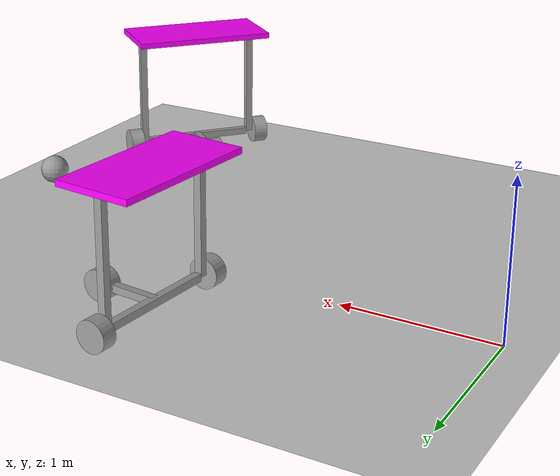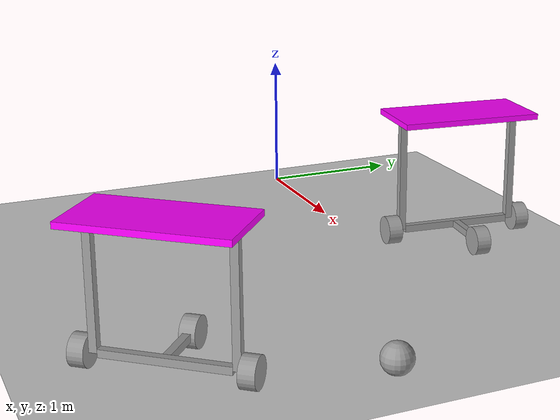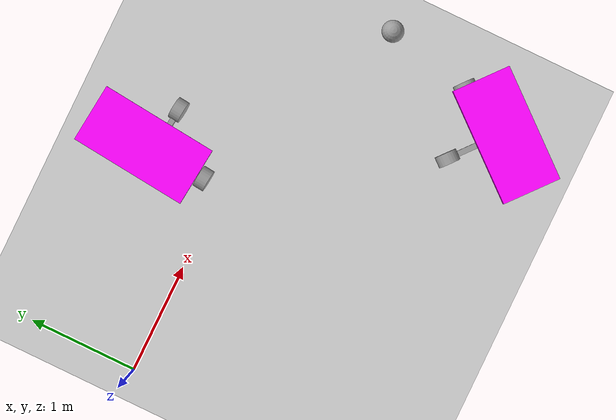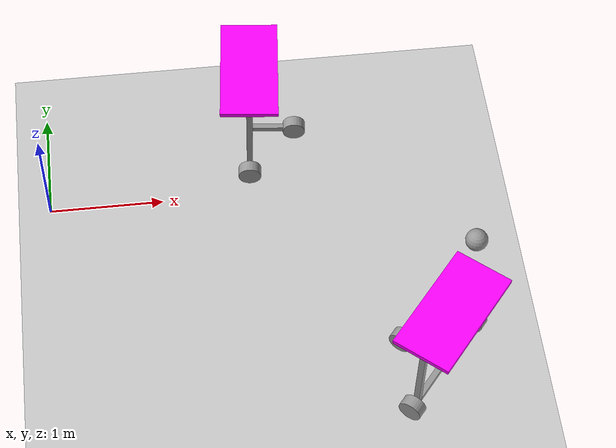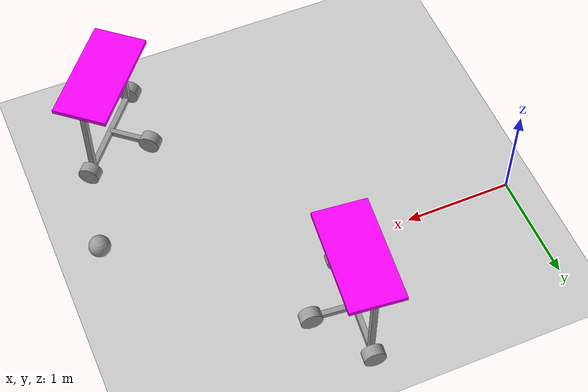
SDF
<sdf version="1.7">
 <world name="default">
  <model name="ground_plane">
   <static>1</static>
   <link name="link">
    <collision name="collision">
     <geometry><plane><normal>0 0 1</normal><size>100 100</size></plane></geometry>
     <surface>
      <contact><collide_bitmask>65535</collide_bitmask></contact>
      <friction><ode><mu>100</mu><mu2>50</mu2></ode></friction>
     </surface>
    </collision>
    <visual name="visual">
     <cast_shadows>0</cast_shadows>
     <geometry><plane><normal>0 0 1</normal><size>100 100</size></plane></geometry>
     <material>
      <script><uri>file://media/materials/scripts/gazebo.material</uri><name>Gazebo/Grey</name></script>
     </material>
    </visual>
   </link>
  </model>
  <model name="HumanoidRobot_3">
   <link name="link_0">
    <inertial>
     <mass>1</mass>
     <inertia>
      <ixx>0.166667</ixx>
      <ixy>0</ixy>
      <ixz>0</ixz>
      <iyy>0.166667</iyy>
      <iyz>0</iyz>
      <izz>0.166667</izz>
     </inertia>
    </inertial>
    <pose>0 -0 0.92 0 -0 0</pose>
    <visual name="visual">
     <geometry><box><size>0.5 1 0.04</size></box></geometry>
     <material>
      <lighting>1</lighting>
      <script><uri>file://media/materials/scripts/gazebo.material</uri><name>Gazebo/Grey</name></script>
      <shader type="pixel"><normal_map>__default__</normal_map></shader>
      <ambient>0.3 0.3 0.3 1</ambient>
      <diffuse>1 0 1 1</diffuse>
      <specular>0.01 0.01 0.01 1</specular>
      <emissive>0 0 0 1</emissive>
     </material>
    </visual>
    <collision name="collision">
     <geometry><box><size>0.5 1 0.04</size></box></geometry>
     <surface>
      <friction>
       <ode><mu>1</mu><mu2>1</mu2><fdir1>0 0 0</fdir1><slip1>0</slip1><slip2>0</slip2></ode>
       <torsional>
        <coefficient>1</coefficient>
        <patch_radius>0</patch_radius>
        <surface_radius>0</surface_radius>
        <use_patch_radius>1</use_patch_radius>
        <ode><slip>0</slip></ode>
       </torsional>
      </friction>
      <bounce><restitution_coefficient>0</restitution_coefficient><threshold>1e+06</threshold></bounce>
      <contact>
       <collide_without_contact>0</collide_without_contact>
       <collide_without_contact_bitmask>1</collide_without_contact_bitmask>
       <collide_bitmask>1</collide_bitmask>
       <ode>
        <soft_cfm>0</soft_cfm>
        <soft_erp>0.2</soft_erp>
        <kp>1e+13</kp>
        <kd>1</kd>
        <max_vel>0.01</max_vel>
        <min_depth>0</min_depth>
       </ode>
       <bullet>
        <split_impulse>1</split_impulse>
        <split_impulse_penetration_threshold>-0.01</split_impulse_penetration_threshold>
        <soft_cfm>0</soft_cfm>
        <soft_erp>0.2</soft_erp>
        <kp>1e+13</kp>
        <kd>1</kd>
       </bullet>
      </contact>
     </surface>
    </collision>
   </link>
   <link name="link_0_0">
    <inertial>
     <mass>1</mass>
     <inertia><ixx>0.145833</ixx><ixy>0</ixy><ixz>0</ixz><iyy>0.145833</iyy><iyz>0</iyz><izz>0.125</izz></inertia>
    </inertial>
    <pose>0 -0.5 0.1 0 -0 0</pose>
    <visual name="visual">
     <pose>0 0 0 1.5708 -0 0</pose>
     <geometry><cylinder><radius>0.1</radius><length>0.1</length></cylinder></geometry>
     <material>
      <lighting>1</lighting>
      <script><uri>file://media/materials/scripts/gazebo.material</uri><name>Gazebo/Grey</name></script>
      <shader type="pixel"><normal_map>__default__</normal_map></shader>
      <ambient>0 0 0 1</ambient>
      <diffuse>0 0 0 1</diffuse>
      <specular>0.01 0.01 0.01 1</specular>
      <emissive>0 0 0 1</emissive>
     </material>
    </visual>
    <collision name="collision">
     <pose>0 0 0 1.5708 -0 0</pose>
     <geometry><cylinder><radius>0.1</radius><length>0.1</length></cylinder></geometry>
     <surface>
      <friction>
       <ode><mu>1</mu><mu2>1</mu2><fdir1>0 0 0</fdir1><slip1>0</slip1><slip2>0</slip2></ode>
       <torsional>
        <coefficient>1</coefficient>
        <patch_radius>0</patch_radius>
        <surface_radius>0</surface_radius>
        <use_patch_radius>1</use_patch_radius>
        <ode><slip>0</slip></ode>
       </torsional>
      </friction>
      <bounce><restitution_coefficient>0</restitution_coefficient><threshold>1e+06</threshold></bounce>
      <contact>
       <collide_without_contact>0</collide_without_contact>
       <collide_without_contact_bitmask>1</collide_without_contact_bitmask>
       <collide_bitmask>1</collide_bitmask>
       <ode>
        <soft_cfm>0</soft_cfm>
        <soft_erp>0.2</soft_erp>
        <kp>1e+13</kp>
        <kd>1</kd>
        <max_vel>0.01</max_vel>
        <min_depth>0</min_depth>
       </ode>
       <bullet>
        <split_impulse>1</split_impulse>
        <split_impulse_penetration_threshold>-0.01</split_impulse_penetration_threshold>
        <soft_cfm>0</soft_cfm>
        <soft_erp>0.2</soft_erp>
        <kp>1e+13</kp>
        <kd>1</kd>
       </bullet>
      </contact>
     </surface>
    </collision>
   </link>
   <link name="link_0_0_clone">
    <inertial>
     <mass>1</mass>
     <inertia><ixx>0.145833</ixx><ixy>0</ixy><ixz>0</ixz><iyy>0.145833</iyy><iyz>0</iyz><izz>0.125</izz></inertia>
    </inertial>
    <pose>-0 0.5 0.1 0 -0 0</pose>
    <visual name="visual_0">
     <pose>0 0 0 1.5708 -0 0</pose>
     <geometry><cylinder><radius>0.1</radius><length>0.1</length></cylinder></geometry>
     <material>
      <lighting>1</lighting>
      <script><uri>file://media/materials/scripts/gazebo.material</uri><name>Gazebo/Gray</name></script>
      <shader type="pixel"><normal_map>__default__</normal_map></shader>
      <ambient>0 0 0 1</ambient>
      <diffuse>0 0 0 1</diffuse>
      <specular>0.01 0.01 0.01 1</specular>
      <emissive>0 0 0 1</emissive>
     </material>
    </visual>
    <collision name="collision">
     <pose>0 0 0 1.5708 -0 0</pose>
     <geometry><cylinder><radius>0.1</radius><length>0.1</length></cylinder></geometry>
     <surface>
      <friction>
       <ode><mu>1</mu><mu2>1</mu2><fdir1>0 0 0</fdir1><slip1>0</slip1><slip2>0</slip2></ode>
       <torsional>
        <coefficient>1</coefficient>
        <patch_radius>0</patch_radius>
        <surface_radius>0</surface_radius>
        <use_patch_radius>1</use_patch_radius>
        <ode><slip>0</slip></ode>
       </torsional>
      </friction>
      <bounce><restitution_coefficient>0</restitution_coefficient><threshold>1e+06</threshold></bounce>
      <contact>
       <collide_without_contact>0</collide_without_contact>
       <collide_without_contact_bitmask>1</collide_without_contact_bitmask>
       <collide_bitmask>1</collide_bitmask>
       <ode>
        <soft_cfm>0</soft_cfm>
        <soft_erp>0.2</soft_erp>
        <kp>1e+13</kp>
        <kd>1</kd>
        <max_vel>0.01</max_vel>
        <min_depth>0</min_depth>
       </ode>
       <bullet>
        <split_impulse>1</split_impulse>
        <split_impulse_penetration_threshold>-0.01</split_impulse_penetration_threshold>
        <soft_cfm>0</soft_cfm>
        <soft_erp>0.2</soft_erp>
        <kp>1e+13</kp>
        <kd>1</kd>
       </bullet>
      </contact>
     </surface>
    </collision>
   </link>
   <link name="link_0_0_clone_0">
    <inertial>
     <mass>1</mass>
     <inertia><ixx>0.145833</ixx><ixy>0</ixy><ixz>0</ixz><iyy>0.145833</iyy><iyz>0</iyz><izz>0.125</izz></inertia>
    </inertial>
    <pose>0.4 0 0.1 0 -0 0</pose>
    <visual name="visual">
     <pose>0 0 0 1.5708 -0 0</pose>
     <geometry><cylinder><radius>0.1</radius><length>0.1</length></cylinder></geometry>
     <material>
      <lighting>1</lighting>
      <script><uri>file://media/materials/scripts/gazebo.material</uri><name>Gazebo/Grey</name></script>
      <shader type="pixel"><normal_map>__default__</normal_map></shader>
      <ambient>0 0 0 1</ambient>
      <diffuse>0 0 0 1</diffuse>
      <specular>0.01 0.01 0.01 1</specular>
      <emissive>0 0 0 1</emissive>
     </material>
    </visual>
    <collision name="collision">
     <pose>0 0 0 1.5708 -0 0</pose>
     <geometry><cylinder><radius>0.1</radius><length>0.1</length></cylinder></geometry>
     <surface>
      <friction>
       <ode><mu>1</mu><mu2>1</mu2><fdir1>0 0 0</fdir1><slip1>0</slip1><slip2>0</slip2></ode>
       <torsional>
        <coefficient>1</coefficient>
        <patch_radius>0</patch_radius>
        <surface_radius>0</surface_radius>
        <use_patch_radius>1</use_patch_radius>
        <ode><slip>0</slip></ode>
       </torsional>
      </friction>
      <bounce><restitution_coefficient>0</restitution_coefficient><threshold>1e+06</threshold></bounce>
      <contact>
       <collide_without_contact>0</collide_without_contact>
       <collide_without_contact_bitmask>1</collide_without_contact_bitmask>
       <collide_bitmask>1</collide_bitmask>
       <ode>
        <soft_cfm>0</soft_cfm>
        <soft_erp>0.2</soft_erp>
        <kp>1e+13</kp>
        <kd>1</kd>
        <max_vel>0.01</max_vel>
        <min_depth>0</min_depth>
       </ode>
       <bullet>
        <split_impulse>1</split_impulse>
        <split_impulse_penetration_threshold>-0.01</split_impulse_penetration_threshold>
        <soft_cfm>0</soft_cfm>
        <soft_erp>0.2</soft_erp>
        <kp>1e+13</kp>
        <kd>1</kd>
       </bullet>
      </contact>
     </surface>
    </collision>
   </link>
   <link name="link_1">
    <inertial>
     <mass>1</mass>
     <inertia>
      <ixx>0.166667</ixx>
      <ixy>0</ixy>
      <ixz>0</ixz>
      <iyy>0.166667</iyy>
      <iyz>0</iyz>
      <izz>0.166667</izz>
     </inertia>
    </inertial>
    <pose>0 -0.425 0.5 0 -0 0</pose>
    <visual name="visual">
     <geometry><box><size>0.05 0.05 0.8</size></box></geometry>
     <material>
      <lighting>1</lighting>
      <script><uri>file://media/materials/scripts/gazebo.material</uri><name>Gazebo/Grey</name></script>
      <shader type="pixel"><normal_map>__default__</normal_map></shader>
      <ambient>0.3 0.3 0.3 1</ambient>
      <diffuse>0.7 0.7 0.7 1</diffuse>
      <specular>0.01 0.01 0.01 1</specular>
      <emissive>0 0 0 1</emissive>
     </material>
    </visual>
    <collision name="collision">
     <geometry><box><size>0.05 0.05 0.8</size></box></geometry>
     <surface>
      <friction>
       <ode><mu>1</mu><mu2>1</mu2><fdir1>0 0 0</fdir1><slip1>0</slip1><slip2>0</slip2></ode>
       <torsional>
        <coefficient>1</coefficient>
        <patch_radius>0</patch_radius>
        <surface_radius>0</surface_radius>
        <use_patch_radius>1</use_patch_radius>
        <ode><slip>0</slip></ode>
       </torsional>
      </friction>
      <bounce><restitution_coefficient>0</restitution_coefficient><threshold>1e+06</threshold></bounce>
      <contact>
       <collide_without_contact>0</collide_without_contact>
       <collide_without_contact_bitmask>1</collide_without_contact_bitmask>
       <collide_bitmask>1</collide_bitmask>
       <ode>
        <soft_cfm>0</soft_cfm>
        <soft_erp>0.2</soft_erp>
        <kp>1e+13</kp>
        <kd>1</kd>
        <max_vel>0.01</max_vel>
        <min_depth>0</min_depth>
       </ode>
       <bullet>
        <split_impulse>1</split_impulse>
        <split_impulse_penetration_threshold>-0.01</split_impulse_penetration_threshold>
        <soft_cfm>0</soft_cfm>
        <soft_erp>0.2</soft_erp>
        <kp>1e+13</kp>
        <kd>1</kd>
       </bullet>
      </contact>
     </surface>
    </collision>
   </link>
   <link name="link_1_clone">
    <inertial>
     <mass>1</mass>
     <inertia>
      <ixx>0.166667</ixx>
      <ixy>0</ixy>
      <ixz>0</ixz>
      <iyy>0.166667</iyy>
      <iyz>0</iyz>
      <izz>0.166667</izz>
     </inertia>
    </inertial>
    <pose>0 0.425 0.5 0 -0 0</pose>
    <visual name="visual">
     <geometry><box><size>0.05 0.05 0.8</size></box></geometry>
     <material>
      <lighting>1</lighting>
      <script><uri>file://media/materials/scripts/gazebo.material</uri><name>Gazebo/Grey</name></script>
      <shader type="pixel"><normal_map>__default__</normal_map></shader>
      <ambient>0.3 0.3 0.3 1</ambient>
      <diffuse>0.7 0.7 0.7 1</diffuse>
      <specular>0.01 0.01 0.01 1</specular>
      <emissive>0 0 0 1</emissive>
     </material>
    </visual>
    <collision name="collision">
     <geometry><box><size>0.05 0.05 0.8</size></box></geometry>
     <surface>
      <friction>
       <ode><mu>1</mu><mu2>1</mu2><fdir1>0 0 0</fdir1><slip1>0</slip1><slip2>0</slip2></ode>
       <torsional>
        <coefficient>1</coefficient>
        <patch_radius>0</patch_radius>
        <surface_radius>0</surface_radius>
        <use_patch_radius>1</use_patch_radius>
        <ode><slip>0</slip></ode>
       </torsional>
      </friction>
      <bounce><restitution_coefficient>0</restitution_coefficient><threshold>1e+06</threshold></bounce>
      <contact>
       <collide_without_contact>0</collide_without_contact>
       <collide_without_contact_bitmask>1</collide_without_contact_bitmask>
       <collide_bitmask>1</collide_bitmask>
       <ode>
        <soft_cfm>0</soft_cfm>
        <soft_erp>0.2</soft_erp>
        <kp>1e+13</kp>
        <kd>1</kd>
        <max_vel>0.01</max_vel>
        <min_depth>0</min_depth>
       </ode>
       <bullet>
        <split_impulse>1</split_impulse>
        <split_impulse_penetration_threshold>-0.01</split_impulse_penetration_threshold>
        <soft_cfm>0</soft_cfm>
        <soft_erp>0.2</soft_erp>
        <kp>1e+13</kp>
        <kd>1</kd>
       </bullet>
      </contact>
     </surface>
    </collision>
   </link>
   <link name="link_1_clone_0">
    <inertial>
     <mass>1</mass>
     <inertia>
      <ixx>0.166667</ixx>
      <ixy>0</ixy>
      <ixz>0</ixz>
      <iyy>0.166667</iyy>
      <iyz>0</iyz>
      <izz>0.166667</izz>
     </inertia>
    </inertial>
    <pose>0 0 0.1 0 -0 0</pose>
    <visual name="visual">
     <geometry><box><size>0.05 0.8 0.05</size></box></geometry>
     <material>
      <lighting>1</lighting>
      <script><uri>file://media/materials/scripts/gazebo.material</uri><name>Gazebo/Grey</name></script>
      <shader type="pixel"><normal_map>__default__</normal_map></shader>
      <ambient>0.3 0.3 0.3 1</ambient>
      <diffuse>0.7 0.7 0.7 1</diffuse>
      <specular>0.01 0.01 0.01 1</specular>
      <emissive>0 0 0 1</emissive>
     </material>
    </visual>
    <collision name="collision">
     <geometry><box><size>0.05 0.8 0.05</size></box></geometry>
     <surface>
      <friction>
       <ode><mu>1</mu><mu2>1</mu2><fdir1>0 0 0</fdir1><slip1>0</slip1><slip2>0</slip2></ode>
       <torsional>
        <coefficient>1</coefficient>
        <patch_radius>0</patch_radius>
        <surface_radius>0</surface_radius>
        <use_patch_radius>1</use_patch_radius>
        <ode><slip>0</slip></ode>
       </torsional>
      </friction>
      <bounce><restitution_coefficient>0</restitution_coefficient><threshold>1e+06</threshold></bounce>
      <contact>
       <collide_without_contact>0</collide_without_contact>
       <collide_without_contact_bitmask>1</collide_without_contact_bitmask>
       <collide_bitmask>1</collide_bitmask>
       <ode>
        <soft_cfm>0</soft_cfm>
        <soft_erp>0.2</soft_erp>
        <kp>1e+13</kp>
        <kd>1</kd>
        <max_vel>0.01</max_vel>
        <min_depth>0</min_depth>
       </ode>
       <bullet>
        <split_impulse>1</split_impulse>
        <split_impulse_penetration_threshold>-0.01</split_impulse_penetration_threshold>
        <soft_cfm>0</soft_cfm>
        <soft_erp>0.2</soft_erp>
        <kp>1e+13</kp>
        <kd>1</kd>
       </bullet>
      </contact>
     </surface>
    </collision>
   </link>
   <link name="link_1_clone_0_clone">
    <inertial>
     <mass>1</mass>
     <inertia>
      <ixx>0.166667</ixx>
      <ixy>0</ixy>
      <ixz>0</ixz>
      <iyy>0.166667</iyy>
      <iyz>0</iyz>
      <izz>0.166667</izz>
     </inertia>
    </inertial>
    <pose>0.2 -0 0.1 0 -0 0</pose>
    <visual name="visual">
     <geometry><box><size>0.4 0.05 0.05</size></box></geometry>
     <material>
      <lighting>1</lighting>
      <script><uri>file://media/materials/scripts/gazebo.material</uri><name>Gazebo/Grey</name></script>
      <shader type="pixel"><normal_map>__default__</normal_map></shader>
      <ambient>0.3 0.3 0.3 1</ambient>
      <diffuse>0.7 0.7 0.7 1</diffuse>
      <specular>0.01 0.01 0.01 1</specular>
      <emissive>0 0 0 1</emissive>
     </material>
    </visual>
    <collision name="collision">
     <geometry><box><size>0.4 0.05 0.05</size></box></geometry>
     <surface>
      <friction>
       <ode><mu>1</mu><mu2>1</mu2><fdir1>0 0 0</fdir1><slip1>0</slip1><slip2>0</slip2></ode>
       <torsional>
        <coefficient>1</coefficient>
        <patch_radius>0</patch_radius>
        <surface_radius>0</surface_radius>
        <use_patch_radius>1</use_patch_radius>
        <ode><slip>0</slip></ode>
       </torsional>
      </friction>
      <bounce><restitution_coefficient>0</restitution_coefficient><threshold>1e+06</threshold></bounce>
      <contact>
       <collide_without_contact>0</collide_without_contact>
       <collide_without_contact_bitmask>1</collide_without_contact_bitmask>
       <collide_bitmask>1</collide_bitmask>
       <ode>
        <soft_cfm>0</soft_cfm>
        <soft_erp>0.2</soft_erp>
        <kp>1e+13</kp>
        <kd>1</kd>
        <max_vel>0.01</max_vel>
        <min_depth>0</min_depth>
       </ode>
       <bullet>
        <split_impulse>1</split_impulse>
        <split_impulse_penetration_threshold>-0.01</split_impulse_penetration_threshold>
        <soft_cfm>0</soft_cfm>
        <soft_erp>0.2</soft_erp>
        <kp>1e+13</kp>
        <kd>1</kd>
       </bullet>
      </contact>
     </surface>
    </collision>
   </link>
   <joint name="link_0_JOINT_1" type="fixed">
    <parent>link_0</parent>
    <child>link_1</child>
    <physics>
     <ode><limit><cfm>0</cfm><erp>0.2</erp></limit><suspension><cfm>0</cfm><erp>0.2</erp></suspension></ode>
    </physics>
   </joint>
   <joint name="link_0_JOINT_2" type="fixed">
    <parent>link_0</parent>
    <child>link_1_clone</child>
    <physics>
     <ode><limit><cfm>0</cfm><erp>0.2</erp></limit><suspension><cfm>0</cfm><erp>0.2</erp></suspension></ode>
    </physics>
   </joint>
   <joint name="link_1_JOINT_0" type="revolute">
    <parent>link_1</parent>
    <child>link_0_0</child>
    <axis>
     <xyz>0 1 0</xyz>
     <limit>
      <lower>-1.79769e+308</lower>
      <upper>1.79769e+308</upper>
      <effort>-1</effort>
      <velocity>-1</velocity>
     </limit>
     <dynamics>
      <spring_reference>0</spring_reference>
      <spring_stiffness>0</spring_stiffness>
      <damping>0</damping>
      <friction>0</friction>
     </dynamics>
    </axis>
    <physics>
     <ode><limit><cfm>0</cfm><erp>0.2</erp></limit><suspension><cfm>0</cfm><erp>0.2</erp></suspension></ode>
    </physics>
   </joint>
   <joint name="link_1_JOINT_6" type="fixed">
    <parent>link_1</parent>
    <child>link_1_clone_0</child>
    <physics>
     <ode><limit><cfm>0</cfm><erp>0.2</erp></limit><suspension><cfm>0</cfm><erp>0.2</erp></suspension></ode>
    </physics>
   </joint>
   <joint name="link_1_clone_0_JOINT_5" type="fixed">
    <parent>link_1_clone_0</parent>
    <child>link_1_clone_0_clone</child>
    <physics>
     <ode><limit><cfm>0</cfm><erp>0.2</erp></limit><suspension><cfm>0</cfm><erp>0.2</erp></suspension></ode>
    </physics>
   </joint>
   <joint name="link_1_clone_0_clone_JOINT_4" type="revolute">
    <parent>link_1_clone_0_clone</parent>
    <child>link_0_0_clone_0</child>
    <axis>
     <xyz>0 1 0</xyz>
     <limit>
      <lower>-1.79769e+308</lower>
      <upper>1.79769e+308</upper>
      <effort>-1</effort>
      <velocity>-1</velocity>
     </limit>
     <dynamics>
      <spring_reference>0</spring_reference>
      <spring_stiffness>0</spring_stiffness>
      <damping>0</damping>
      <friction>0</friction>
     </dynamics>
    </axis>
    <physics>
     <ode><limit><cfm>0</cfm><erp>0.2</erp></limit><suspension><cfm>0</cfm><erp>0.2</erp></suspension></ode>
    </physics>
   </joint>
   <joint name="link_1_clone_JOINT_3" type="revolute">
    <parent>link_1_clone</parent>
    <child>link_0_0_clone</child>
    <axis>
     <xyz>0 1 0</xyz>
     <limit>
      <lower>-1.79769e+308</lower>
      <upper>1.79769e+308</upper>
      <effort>-1</effort>
      <velocity>-1</velocity>
     </limit>
     <dynamics>
      <spring_reference>0</spring_reference>
      <spring_stiffness>0</spring_stiffness>
      <damping>0</damping>
      <friction>0</friction>
     </dynamics>
    </axis>
    <physics>
     <ode><limit><cfm>0</cfm><erp>0.2</erp></limit><suspension><cfm>0</cfm><erp>0.2</erp></suspension></ode>
    </physics>
   </joint>
   <joint name="link_1_clone_JOINT_7" type="fixed">
    <parent>link_1_clone</parent>
    <child>link_1_clone_0</child>
    <physics>
     <ode><limit><cfm>0</cfm><erp>0.2</erp></limit><suspension><cfm>0</cfm><erp>0.2</erp></suspension></ode>
    </physics>
   </joint>
   <static>0</static>
   <pose>1.84343 0.667658 -1e-06 -1e-06 -7e-06 -0.100577</pose>
  </model>
  <model name="HumanoidRobot">
   <link name="link_0">
    <inertial>
     <mass>1</mass>
     <inertia>
      <ixx>0.166667</ixx>
      <ixy>0</ixy>
      <ixz>0</ixz>
      <iyy>0.166667</iyy>
      <iyz>0</iyz>
      <izz>0.166667</izz>
     </inertia>
    </inertial>
    <pose>0 -0 0.92 0 -0 0</pose>
    <visual name="visual">
     <geometry><box><size>0.5 1 0.04</size></box></geometry>
     <material>
      <lighting>1</lighting>
      <script><uri>file://media/materials/scripts/gazebo.material</uri><name>Gazebo/Grey</name></script>
      <shader type="pixel"><normal_map>__default__</normal_map></shader>
      <ambient>0.3 0.3 0.3 1</ambient>
      <diffuse>1 0 1 1</diffuse>
      <specular>0.01 0.01 0.01 1</specular>
      <emissive>0 0 0 1</emissive>
     </material>
    </visual>
    <collision name="collision">
     <geometry><box><size>0.5 1 0.04</size></box></geometry>
     <surface>
      <friction>
       <ode><mu>1</mu><mu2>1</mu2><fdir1>0 0 0</fdir1><slip1>0</slip1><slip2>0</slip2></ode>
       <torsional>
        <coefficient>1</coefficient>
        <patch_radius>0</patch_radius>
        <surface_radius>0</surface_radius>
        <use_patch_radius>1</use_patch_radius>
        <ode><slip>0</slip></ode>
       </torsional>
      </friction>
      <bounce><restitution_coefficient>0</restitution_coefficient><threshold>1e+06</threshold></bounce>
      <contact>
       <collide_without_contact>0</collide_without_contact>
       <collide_without_contact_bitmask>1</collide_without_contact_bitmask>
       <collide_bitmask>1</collide_bitmask>
       <ode>
        <soft_cfm>0</soft_cfm>
        <soft_erp>0.2</soft_erp>
        <kp>1e+13</kp>
        <kd>1</kd>
        <max_vel>0.01</max_vel>
        <min_depth>0</min_depth>
       </ode>
       <bullet>
        <split_impulse>1</split_impulse>
        <split_impulse_penetration_threshold>-0.01</split_impulse_penetration_threshold>
        <soft_cfm>0</soft_cfm>
        <soft_erp>0.2</soft_erp>
        <kp>1e+13</kp>
        <kd>1</kd>
       </bullet>
      </contact>
     </surface>
    </collision>
   </link>
   <link name="link_0_0">
    <inertial>
     <mass>1</mass>
     <inertia><ixx>0.145833</ixx><ixy>0</ixy><ixz>0</ixz><iyy>0.145833</iyy><iyz>0</iyz><izz>0.125</izz></inertia>
    </inertial>
    <pose>0 -0.5 0.1 0 -0 0</pose>
    <visual name="visual">
     <pose>0 0 0 1.5708 -0 0</pose>
     <geometry><cylinder><radius>0.1</radius><length>0.1</length></cylinder></geometry>
     <material>
      <lighting>1</lighting>
      <script><uri>file://media/materials/scripts/gazebo.material</uri><name>Gazebo/Grey</name></script>
      <shader type="pixel"><normal_map>__default__</normal_map></shader>
      <ambient>0 0 0 1</ambient>
      <diffuse>0 0 0 1</diffuse>
      <specular>0.01 0.01 0.01 1</specular>
      <emissive>0 0 0 1</emissive>
     </material>
    </visual>
    <collision name="collision">
     <pose>0 0 0 1.5708 -0 0</pose>
     <geometry><cylinder><radius>0.1</radius><length>0.1</length></cylinder></geometry>
     <surface>
      <friction>
       <ode><mu>1</mu><mu2>1</mu2><fdir1>0 0 0</fdir1><slip1>0</slip1><slip2>0</slip2></ode>
       <torsional>
        <coefficient>1</coefficient>
        <patch_radius>0</patch_radius>
        <surface_radius>0</surface_radius>
        <use_patch_radius>1</use_patch_radius>
        <ode><slip>0</slip></ode>
       </torsional>
      </friction>
      <bounce><restitution_coefficient>0</restitution_coefficient><threshold>1e+06</threshold></bounce>
      <contact>
       <collide_without_contact>0</collide_without_contact>
       <collide_without_contact_bitmask>1</collide_without_contact_bitmask>
       <collide_bitmask>1</collide_bitmask>
       <ode>
        <soft_cfm>0</soft_cfm>
        <soft_erp>0.2</soft_erp>
        <kp>1e+13</kp>
        <kd>1</kd>
        <max_vel>0.01</max_vel>
        <min_depth>0</min_depth>
       </ode>
       <bullet>
        <split_impulse>1</split_impulse>
        <split_impulse_penetration_threshold>-0.01</split_impulse_penetration_threshold>
        <soft_cfm>0</soft_cfm>
        <soft_erp>0.2</soft_erp>
        <kp>1e+13</kp>
        <kd>1</kd>
       </bullet>
      </contact>
     </surface>
    </collision>
   </link>
   <link name="link_0_0_clone">
    <inertial>
     <mass>1</mass>
     <inertia><ixx>0.145833</ixx><ixy>0</ixy><ixz>0</ixz><iyy>0.145833</iyy><iyz>0</iyz><izz>0.125</izz></inertia>
    </inertial>
    <pose>-0 0.5 0.1 0 -0 0</pose>
    <visual name="visual_0">
     <pose>0 0 0 1.5708 -0 0</pose>
     <geometry><cylinder><radius>0.1</radius><length>0.1</length></cylinder></geometry>
     <material>
      <lighting>1</lighting>
      <script><uri>file://media/materials/scripts/gazebo.material</uri><name>Gazebo/Gray</name></script>
      <shader type="pixel"><normal_map>__default__</normal_map></shader>
      <ambient>0 0 0 1</ambient>
      <diffuse>0 0 0 1</diffuse>
      <specular>0.01 0.01 0.01 1</specular>
      <emissive>0 0 0 1</emissive>
     </material>
    </visual>
    <collision name="collision">
     <pose>0 0 0 1.5708 -0 0</pose>
     <geometry><cylinder><radius>0.1</radius><length>0.1</length></cylinder></geometry>
     <surface>
      <friction>
       <ode><mu>1</mu><mu2>1</mu2><fdir1>0 0 0</fdir1><slip1>0</slip1><slip2>0</slip2></ode>
       <torsional>
        <coefficient>1</coefficient>
        <patch_radius>0</patch_radius>
        <surface_radius>0</surface_radius>
        <use_patch_radius>1</use_patch_radius>
        <ode><slip>0</slip></ode>
       </torsional>
      </friction>
      <bounce><restitution_coefficient>0</restitution_coefficient><threshold>1e+06</threshold></bounce>
      <contact>
       <collide_without_contact>0</collide_without_contact>
       <collide_without_contact_bitmask>1</collide_without_contact_bitmask>
       <collide_bitmask>1</collide_bitmask>
       <ode>
        <soft_cfm>0</soft_cfm>
        <soft_erp>0.2</soft_erp>
        <kp>1e+13</kp>
        <kd>1</kd>
        <max_vel>0.01</max_vel>
        <min_depth>0</min_depth>
       </ode>
       <bullet>
        <split_impulse>1</split_impulse>
        <split_impulse_penetration_threshold>-0.01</split_impulse_penetration_threshold>
        <soft_cfm>0</soft_cfm>
        <soft_erp>0.2</soft_erp>
        <kp>1e+13</kp>
        <kd>1</kd>
       </bullet>
      </contact>
     </surface>
    </collision>
   </link>
   <link name="link_0_0_clone_0">
    <inertial>
     <mass>1</mass>
     <inertia><ixx>0.145833</ixx><ixy>0</ixy><ixz>0</ixz><iyy>0.145833</iyy><iyz>0</iyz><izz>0.125</izz></inertia>
    </inertial>
    <pose>0.4 0 0.1 0 -0 0</pose>
    <visual name="visual">
     <pose>0 0 0 1.5708 -0 0</pose>
     <geometry><cylinder><radius>0.1</radius><length>0.1</length></cylinder></geometry>
     <material>
      <lighting>1</lighting>
      <script><uri>file://media/materials/scripts/gazebo.material</uri><name>Gazebo/Grey</name></script>
      <shader type="pixel"><normal_map>__default__</normal_map></shader>
      <ambient>0 0 0 1</ambient>
      <diffuse>0 0 0 1</diffuse>
      <specular>0.01 0.01 0.01 1</specular>
      <emissive>0 0 0 1</emissive>
     </material>
    </visual>
    <collision name="collision">
     <pose>0 0 0 1.5708 -0 0</pose>
     <geometry><cylinder><radius>0.1</radius><length>0.1</length></cylinder></geometry>
     <surface>
      <friction>
       <ode><mu>1</mu><mu2>1</mu2><fdir1>0 0 0</fdir1><slip1>0</slip1><slip2>0</slip2></ode>
       <torsional>
        <coefficient>1</coefficient>
        <patch_radius>0</patch_radius>
        <surface_radius>0</surface_radius>
        <use_patch_radius>1</use_patch_radius>
        <ode><slip>0</slip></ode>
       </torsional>
      </friction>
      <bounce><restitution_coefficient>0</restitution_coefficient><threshold>1e+06</threshold></bounce>
      <contact>
       <collide_without_contact>0</collide_without_contact>
       <collide_without_contact_bitmask>1</collide_without_contact_bitmask>
       <collide_bitmask>1</collide_bitmask>
       <ode>
        <soft_cfm>0</soft_cfm>
        <soft_erp>0.2</soft_erp>
        <kp>1e+13</kp>
        <kd>1</kd>
        <max_vel>0.01</max_vel>
        <min_depth>0</min_depth>
       </ode>
       <bullet>
        <split_impulse>1</split_impulse>
        <split_impulse_penetration_threshold>-0.01</split_impulse_penetration_threshold>
        <soft_cfm>0</soft_cfm>
        <soft_erp>0.2</soft_erp>
        <kp>1e+13</kp>
        <kd>1</kd>
       </bullet>
      </contact>
     </surface>
    </collision>
   </link>
   <link name="link_1">
    <inertial>
     <mass>1</mass>
     <inertia>
      <ixx>0.166667</ixx>
      <ixy>0</ixy>
      <ixz>0</ixz>
      <iyy>0.166667</iyy>
      <iyz>0</iyz>
      <izz>0.166667</izz>
     </inertia>
    </inertial>
    <pose>0 -0.425 0.5 0 -0 0</pose>
    <visual name="visual">
     <geometry><box><size>0.05 0.05 0.8</size></box></geometry>
     <material>
      <lighting>1</lighting>
      <script><uri>file://media/materials/scripts/gazebo.material</uri><name>Gazebo/Grey</name></script>
      <shader type="pixel"><normal_map>__default__</normal_map></shader>
      <ambient>0.3 0.3 0.3 1</ambient>
      <diffuse>0.7 0.7 0.7 1</diffuse>
      <specular>0.01 0.01 0.01 1</specular>
      <emissive>0 0 0 1</emissive>
     </material>
    </visual>
    <collision name="collision">
     <geometry><box><size>0.05 0.05 0.8</size></box></geometry>
     <surface>
      <friction>
       <ode><mu>1</mu><mu2>1</mu2><fdir1>0 0 0</fdir1><slip1>0</slip1><slip2>0</slip2></ode>
       <torsional>
        <coefficient>1</coefficient>
        <patch_radius>0</patch_radius>
        <surface_radius>0</surface_radius>
        <use_patch_radius>1</use_patch_radius>
        <ode><slip>0</slip></ode>
       </torsional>
      </friction>
      <bounce><restitution_coefficient>0</restitution_coefficient><threshold>1e+06</threshold></bounce>
      <contact>
       <collide_without_contact>0</collide_without_contact>
       <collide_without_contact_bitmask>1</collide_without_contact_bitmask>
       <collide_bitmask>1</collide_bitmask>
       <ode>
        <soft_cfm>0</soft_cfm>
        <soft_erp>0.2</soft_erp>
        <kp>1e+13</kp>
        <kd>1</kd>
        <max_vel>0.01</max_vel>
        <min_depth>0</min_depth>
       </ode>
       <bullet>
        <split_impulse>1</split_impulse>
        <split_impulse_penetration_threshold>-0.01</split_impulse_penetration_threshold>
        <soft_cfm>0</soft_cfm>
        <soft_erp>0.2</soft_erp>
        <kp>1e+13</kp>
        <kd>1</kd>
       </bullet>
      </contact>
     </surface>
    </collision>
   </link>
   <link name="link_1_clone">
    <inertial>
     <mass>1</mass>
     <inertia>
      <ixx>0.166667</ixx>
      <ixy>0</ixy>
      <ixz>0</ixz>
      <iyy>0.166667</iyy>
      <iyz>0</iyz>
      <izz>0.166667</izz>
     </inertia>
    </inertial>
    <pose>0 0.425 0.5 0 -0 0</pose>
    <visual name="visual">
     <geometry><box><size>0.05 0.05 0.8</size></box></geometry>
     <material>
      <lighting>1</lighting>
      <script><uri>file://media/materials/scripts/gazebo.material</uri><name>Gazebo/Grey</name></script>
      <shader type="pixel"><normal_map>__default__</normal_map></shader>
      <ambient>0.3 0.3 0.3 1</ambient>
      <diffuse>0.7 0.7 0.7 1</diffuse>
      <specular>0.01 0.01 0.01 1</specular>
      <emissive>0 0 0 1</emissive>
     </material>
    </visual>
    <collision name="collision">
     <geometry><box><size>0.05 0.05 0.8</size></box></geometry>
     <surface>
      <friction>
       <ode><mu>1</mu><mu2>1</mu2><fdir1>0 0 0</fdir1><slip1>0</slip1><slip2>0</slip2></ode>
       <torsional>
        <coefficient>1</coefficient>
        <patch_radius>0</patch_radius>
        <surface_radius>0</surface_radius>
        <use_patch_radius>1</use_patch_radius>
        <ode><slip>0</slip></ode>
       </torsional>
      </friction>
      <bounce><restitution_coefficient>0</restitution_coefficient><threshold>1e+06</threshold></bounce>
      <contact>
       <collide_without_contact>0</collide_without_contact>
       <collide_without_contact_bitmask>1</collide_without_contact_bitmask>
       <collide_bitmask>1</collide_bitmask>
       <ode>
        <soft_cfm>0</soft_cfm>
        <soft_erp>0.2</soft_erp>
        <kp>1e+13</kp>
        <kd>1</kd>
        <max_vel>0.01</max_vel>
        <min_depth>0</min_depth>
       </ode>
       <bullet>
        <split_impulse>1</split_impulse>
        <split_impulse_penetration_threshold>-0.01</split_impulse_penetration_threshold>
        <soft_cfm>0</soft_cfm>
        <soft_erp>0.2</soft_erp>
        <kp>1e+13</kp>
        <kd>1</kd>
       </bullet>
      </contact>
     </surface>
    </collision>
   </link>
   <link name="link_1_clone_0">
    <inertial>
     <mass>1</mass>
     <inertia>
      <ixx>0.166667</ixx>
      <ixy>0</ixy>
      <ixz>0</ixz>
      <iyy>0.166667</iyy>
      <iyz>0</iyz>
      <izz>0.166667</izz>
     </inertia>
    </inertial>
    <pose>0 0 0.1 0 -0 0</pose>
    <visual name="visual">
     <geometry><box><size>0.05 0.8 0.05</size></box></geometry>
     <material>
      <lighting>1</lighting>
      <script><uri>file://media/materials/scripts/gazebo.material</uri><name>Gazebo/Grey</name></script>
      <shader type="pixel"><normal_map>__default__</normal_map></shader>
      <ambient>0.3 0.3 0.3 1</ambient>
      <diffuse>0.7 0.7 0.7 1</diffuse>
      <specular>0.01 0.01 0.01 1</specular>
      <emissive>0 0 0 1</emissive>
     </material>
    </visual>
    <collision name="collision">
     <geometry><box><size>0.05 0.8 0.05</size></box></geometry>
     <surface>
      <friction>
       <ode><mu>1</mu><mu2>1</mu2><fdir1>0 0 0</fdir1><slip1>0</slip1><slip2>0</slip2></ode>
       <torsional>
        <coefficient>1</coefficient>
        <patch_radius>0</patch_radius>
        <surface_radius>0</surface_radius>
        <use_patch_radius>1</use_patch_radius>
        <ode><slip>0</slip></ode>
       </torsional>
      </friction>
      <bounce><restitution_coefficient>0</restitution_coefficient><threshold>1e+06</threshold></bounce>
      <contact>
       <collide_without_contact>0</collide_without_contact>
       <collide_without_contact_bitmask>1</collide_without_contact_bitmask>
       <collide_bitmask>1</collide_bitmask>
       <ode>
        <soft_cfm>0</soft_cfm>
        <soft_erp>0.2</soft_erp>
        <kp>1e+13</kp>
        <kd>1</kd>
        <max_vel>0.01</max_vel>
        <min_depth>0</min_depth>
       </ode>
       <bullet>
        <split_impulse>1</split_impulse>
        <split_impulse_penetration_threshold>-0.01</split_impulse_penetration_threshold>
        <soft_cfm>0</soft_cfm>
        <soft_erp>0.2</soft_erp>
        <kp>1e+13</kp>
        <kd>1</kd>
       </bullet>
      </contact>
     </surface>
    </collision>
   </link>
   <link name="link_1_clone_0_clone">
    <inertial>
     <mass>1</mass>
     <inertia>
      <ixx>0.166667</ixx>
      <ixy>0</ixy>
      <ixz>0</ixz>
      <iyy>0.166667</iyy>
      <iyz>0</iyz>
      <izz>0.166667</izz>
     </inertia>
    </inertial>
    <pose>0.2 -0 0.1 0 -0 0</pose>
    <visual name="visual">
     <geometry><box><size>0.4 0.05 0.05</size></box></geometry>
     <material>
      <lighting>1</lighting>
      <script><uri>file://media/materials/scripts/gazebo.material</uri><name>Gazebo/Grey</name></script>
      <shader type="pixel"><normal_map>__default__</normal_map></shader>
      <ambient>0.3 0.3 0.3 1</ambient>
      <diffuse>0.7 0.7 0.7 1</diffuse>
      <specular>0.01 0.01 0.01 1</specular>
      <emissive>0 0 0 1</emissive>
     </material>
    </visual>
    <collision name="collision">
     <geometry><box><size>0.4 0.05 0.05</size></box></geometry>
     <surface>
      <friction>
       <ode><mu>1</mu><mu2>1</mu2><fdir1>0 0 0</fdir1><slip1>0</slip1><slip2>0</slip2></ode>
       <torsional>
        <coefficient>1</coefficient>
        <patch_radius>0</patch_radius>
        <surface_radius>0</surface_radius>
        <use_patch_radius>1</use_patch_radius>
        <ode><slip>0</slip></ode>
       </torsional>
      </friction>
      <bounce><restitution_coefficient>0</restitution_coefficient><threshold>1e+06</threshold></bounce>
      <contact>
       <collide_without_contact>0</collide_without_contact>
       <collide_without_contact_bitmask>1</collide_without_contact_bitmask>
       <collide_bitmask>1</collide_bitmask>
       <ode>
        <soft_cfm>0</soft_cfm>
        <soft_erp>0.2</soft_erp>
        <kp>1e+13</kp>
        <kd>1</kd>
        <max_vel>0.01</max_vel>
        <min_depth>0</min_depth>
       </ode>
       <bullet>
        <split_impulse>1</split_impulse>
        <split_impulse_penetration_threshold>-0.01</split_impulse_penetration_threshold>
        <soft_cfm>0</soft_cfm>
        <soft_erp>0.2</soft_erp>
        <kp>1e+13</kp>
        <kd>1</kd>
       </bullet>
      </contact>
     </surface>
    </collision>
   </link>
   <joint name="link_0_JOINT_1" type="fixed">
    <parent>link_0</parent>
    <child>link_1</child>
    <physics>
     <ode><limit><cfm>0</cfm><erp>0.2</erp></limit><suspension><cfm>0</cfm><erp>0.2</erp></suspension></ode>
    </physics>
   </joint>
   <joint name="link_0_JOINT_2" type="fixed">
    <parent>link_0</parent>
    <child>link_1_clone</child>
    <physics>
     <ode><limit><cfm>0</cfm><erp>0.2</erp></limit><suspension><cfm>0</cfm><erp>0.2</erp></suspension></ode>
    </physics>
   </joint>
   <joint name="link_1_JOINT_0" type="revolute">
    <parent>link_1</parent>
    <child>link_0_0</child>
    <axis>
     <xyz>0 1 0</xyz>
     <limit>
      <lower>-1.79769e+308</lower>
      <upper>1.79769e+308</upper>
      <effort>-1</effort>
      <velocity>-1</velocity>
     </limit>
     <dynamics>
      <spring_reference>0</spring_reference>
      <spring_stiffness>0</spring_stiffness>
      <damping>0</damping>
      <friction>0</friction>
     </dynamics>
    </axis>
    <physics>
     <ode><limit><cfm>0</cfm><erp>0.2</erp></limit><suspension><cfm>0</cfm><erp>0.2</erp></suspension></ode>
    </physics>
   </joint>
   <joint name="link_1_JOINT_6" type="fixed">
    <parent>link_1</parent>
    <child>link_1_clone_0</child>
    <physics>
     <ode><limit><cfm>0</cfm><erp>0.2</erp></limit><suspension><cfm>0</cfm><erp>0.2</erp></suspension></ode>
    </physics>
   </joint>
   <joint name="link_1_clone_0_JOINT_5" type="fixed">
    <parent>link_1_clone_0</parent>
    <child>link_1_clone_0_clone</child>
    <physics>
     <ode><limit><cfm>0</cfm><erp>0.2</erp></limit><suspension><cfm>0</cfm><erp>0.2</erp></suspension></ode>
    </physics>
   </joint>
   <joint name="link_1_clone_0_clone_JOINT_4" type="revolute">
    <parent>link_1_clone_0_clone</parent>
    <child>link_0_0_clone_0</child>
    <axis>
     <xyz>0 1 0</xyz>
     <limit>
      <lower>-1.79769e+308</lower>
      <upper>1.79769e+308</upper>
      <effort>-1</effort>
      <velocity>-1</velocity>
     </limit>
     <dynamics>
      <spring_reference>0</spring_reference>
      <spring_stiffness>0</spring_stiffness>
      <damping>0</damping>
      <friction>0</friction>
     </dynamics>
    </axis>
    <physics>
     <ode><limit><cfm>0</cfm><erp>0.2</erp></limit><suspension><cfm>0</cfm><erp>0.2</erp></suspension></ode>
    </physics>
   </joint>
   <joint name="link_1_clone_JOINT_3" type="revolute">
    <parent>link_1_clone</parent>
    <child>link_0_0_clone</child>
    <axis>
     <xyz>0 1 0</xyz>
     <limit>
      <lower>-1.79769e+308</lower>
      <upper>1.79769e+308</upper>
      <effort>-1</effort>
      <velocity>-1</velocity>
     </limit>
     <dynamics>
      <spring_reference>0</spring_reference>
      <spring_stiffness>0</spring_stiffness>
      <damping>0</damping>
      <friction>0</friction>
     </dynamics>
    </axis>
    <physics>
     <ode><limit><cfm>0</cfm><erp>0.2</erp></limit><suspension><cfm>0</cfm><erp>0.2</erp></suspension></ode>
    </physics>
   </joint>
   <joint name="link_1_clone_JOINT_7" type="fixed">
    <parent>link_1_clone</parent>
    <child>link_1_clone_0</child>
    <physics>
     <ode><limit><cfm>0</cfm><erp>0.2</erp></limit><suspension><cfm>0</cfm><erp>0.2</erp></suspension></ode>
    </physics>
   </joint>
   <static>0</static>
   <pose>3.18687 -1.94041 -1e-06 2e-06 -1.1e-05 2.44224</pose>
  </model>
  <model name="RSWhiteBall">
   <link name="link_0">
    <inertial>
     <mass>1</mass>
     <inertia><ixx>0.1</ixx><ixy>0</ixy><ixz>0</ixz><iyy>0.1</iyy><iyz>0</iyz><izz>0.1</izz></inertia>
    </inertial>
    <visual name="visual">
     <geometry><sphere><radius>0.1</radius></sphere></geometry>
     <material>
      <lighting>1</lighting>
      <script><uri>file://media/materials/scripts/gazebo.material</uri><name>Gazebo/Grey</name></script>
      <shader type="pixel"><normal_map>__default__</normal_map></shader>
      <ambient>1 1 1 1</ambient>
      <diffuse>1 1 1 1</diffuse>
      <specular>1 1 1 1</specular>
      <emissive>1 1 1 1</emissive>
     </material>
    </visual>
    <collision name="collision">
     <geometry><sphere><radius>0.1</radius></sphere></geometry>
     <surface>
      <friction>
       <ode><mu>1</mu><mu2>1</mu2><fdir1>0 0 0</fdir1><slip1>0</slip1><slip2>0</slip2></ode>
       <torsional>
        <coefficient>1</coefficient>
        <patch_radius>0</patch_radius>
        <surface_radius>0</surface_radius>
        <use_patch_radius>1</use_patch_radius>
        <ode><slip>0</slip></ode>
       </torsional>
      </friction>
      <bounce><restitution_coefficient>0</restitution_coefficient><threshold>1e+06</threshold></bounce>
      <contact>
       <collide_without_contact>0</collide_without_contact>
       <collide_without_contact_bitmask>1</collide_without_contact_bitmask>
       <collide_bitmask>1</collide_bitmask>
       <ode>
        <soft_cfm>0</soft_cfm>
        <soft_erp>0.2</soft_erp>
        <kp>1e+13</kp>
        <kd>1</kd>
        <max_vel>0.01</max_vel>
        <min_depth>0</min_depth>
       </ode>
       <bullet>
        <split_impulse>1</split_impulse>
        <split_impulse_penetration_threshold>-0.01</split_impulse_penetration_threshold>
        <soft_cfm>0</soft_cfm>
        <soft_erp>0.2</soft_erp>
        <kp>1e+13</kp>
        <kd>1</kd>
       </bullet>
      </contact>
     </surface>
    </collision>
   </link>
   <static>0</static>
   <pose>3.67932 -0.766255 0.1 0 -0 0</pose>
  </model>
 </world>
</sdf>
